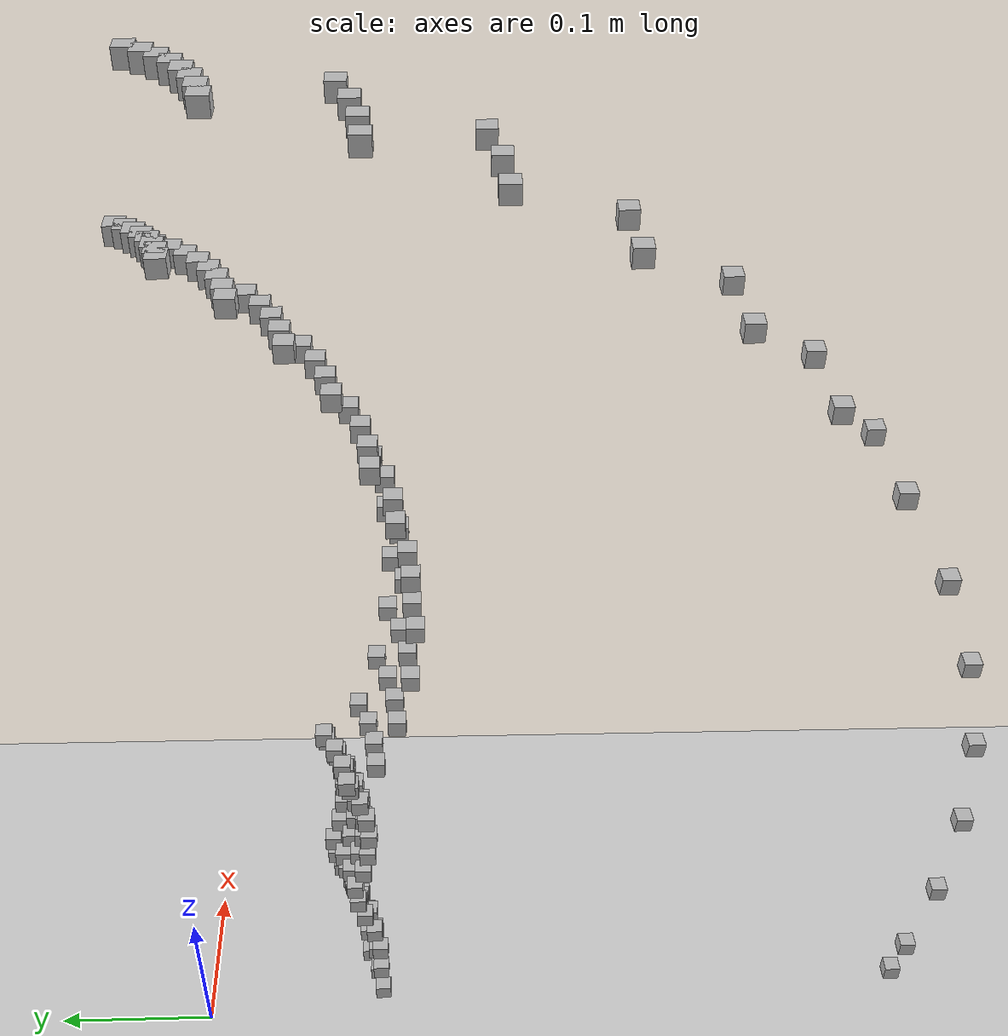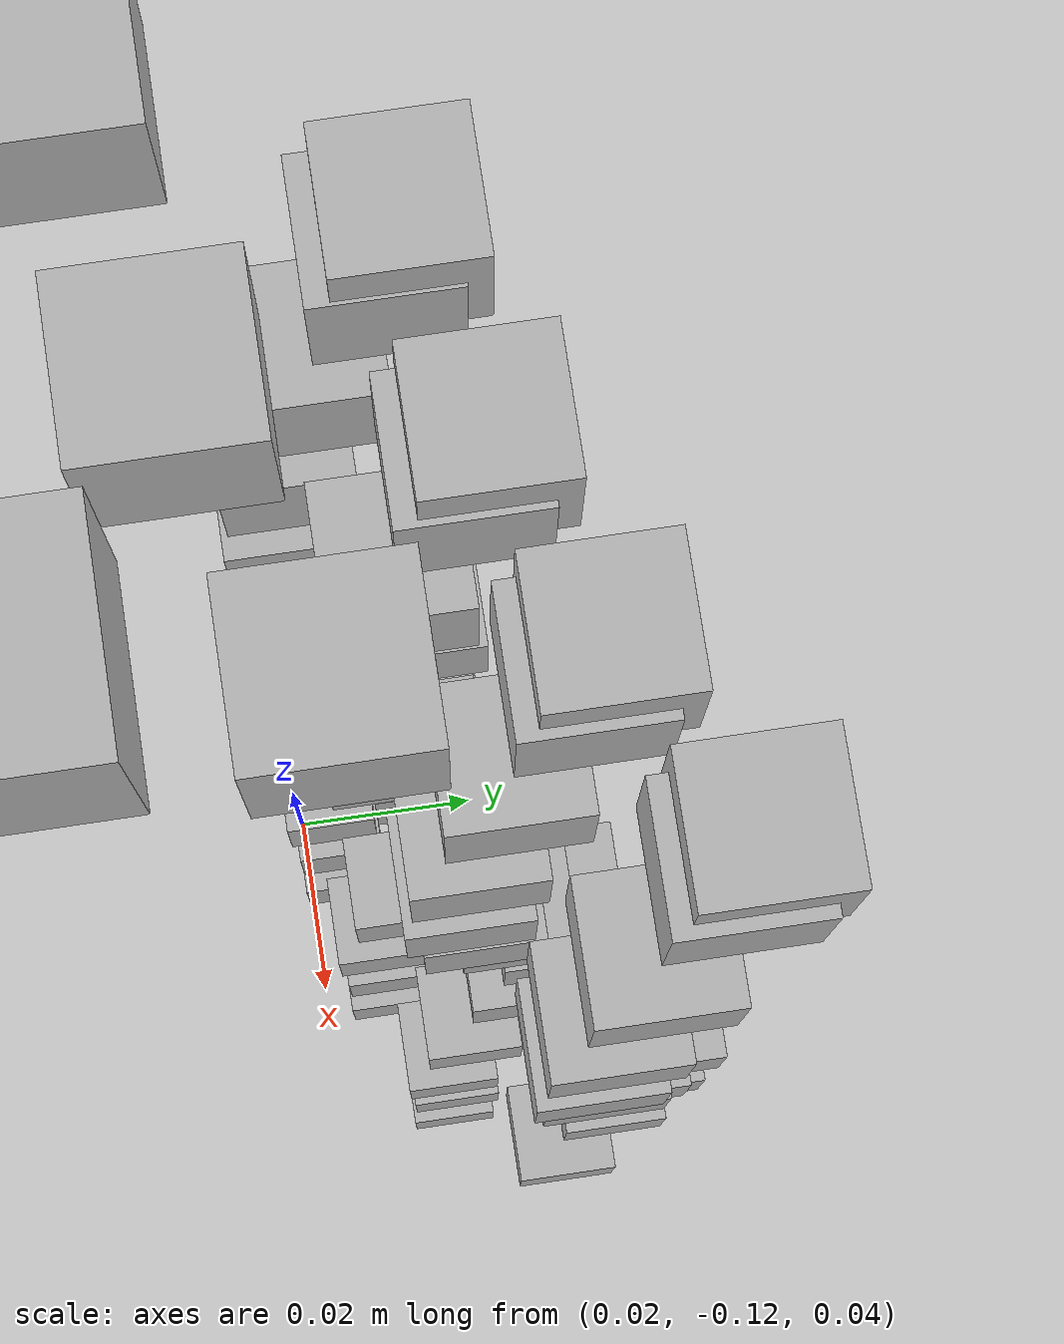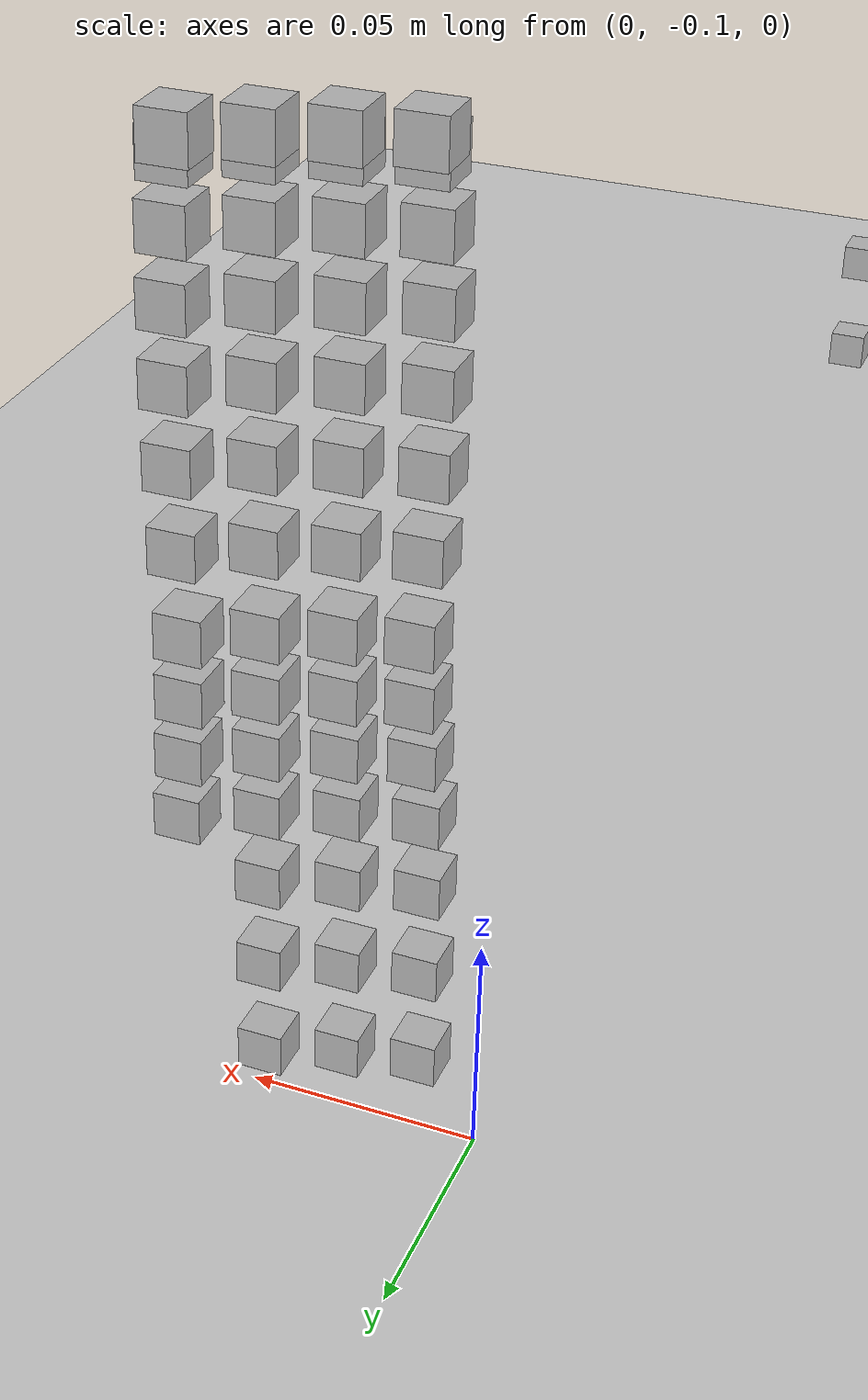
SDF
<sdf version="1.6">
 <world name="default">
  <model name="ground_plane">
   <static>1</static>
   <link name="link">
    <collision name="collision">
     <geometry><plane><normal>0 0 1</normal><size>100 100</size></plane></geometry>
     <surface>
      <contact><collide_bitmask>65535</collide_bitmask></contact>
      <friction><ode><mu>100</mu><mu2>50</mu2></ode></friction>
     </surface>
    </collision>
    <visual name="visual">
     <cast_shadows>0</cast_shadows>
     <geometry><plane><normal>0 0 1</normal><size>100 100</size></plane></geometry>
     <material>
      <script><uri>file://media/materials/scripts/gazebo.material</uri><name>Gazebo/Grey</name></script>
     </material>
    </visual>
   </link>
  </model>
  <model name="box_1685262135_6582057">
   <pose>0.00802323165047613 -0.45965063341047574 0.031024085780011867 0.0 0.0 0.0</pose>
   <static>1</static>
   <link name="box_1685262135_6582057_link">
    <visual name="visual"><geometry><box><size>0.01 0.01 0.01</size></box></geometry></visual>
   </link>
  </model>
  <model name="box_1685262135_6589622">
   <pose>0.0081197060630809 -0.46517764880695317 0.05746253559996678 0.0 0.0 0.0</pose>
   <static>1</static>
   <link name="box_1685262135_6589622_link">
    <visual name="visual"><geometry><box><size>0.01 0.01 0.01</size></box></geometry></visual>
   </link>
  </model>
  <model name="box_1685262135_6596909">
   <pose>0.008290474247812474 -0.4749609515579795 0.11486971929344875 0.0 0.0 0.0</pose>
   <static>1</static>
   <link name="box_1685262135_6596909_link">
    <visual name="visual"><geometry><box><size>0.01 0.01 0.01</size></box></geometry></visual>
   </link>
  </model>
  <model name="box_1685262135_6604342">
   <pose>0.008334752513249341 -0.47749765168593417 0.18152491402812204 0.0 0.0 0.0</pose>
   <static>1</static>
   <link name="box_1685262135_6604342_link">
    <visual name="visual"><geometry><box><size>0.01 0.01 0.01</size></box></geometry></visual>
   </link>
  </model>
  <model name="box_1685262135_6611545">
   <pose>0.008216562687438051 -0.47072656110005917 0.24785452819062248 0.0 0.0 0.0</pose>
   <static>1</static>
   <link name="box_1685262135_6611545_link">
    <visual name="visual"><geometry><box><size>0.01 0.01 0.01</size></box></geometry></visual>
   </link>
  </model>
  <model name="box_1685262135_6619153">
   <pose>0.007938128575516708 -0.45477508151139073 0.31265492137086764 0.0 0.0 0.0</pose>
   <static>1</static>
   <link name="box_1685262135_6619153_link">
    <visual name="visual"><geometry><box><size>0.01 0.01 0.01</size></box></geometry></visual>
   </link>
  </model>
  <model name="box_1685262135_6626463">
   <pose>0.007505643757544571 -0.4299980428838808 0.37450685986133164 0.0 0.0 0.0</pose>
   <static>1</static>
   <link name="box_1685262135_6626463_link">
    <visual name="visual"><geometry><box><size>0.01 0.01 0.01</size></box></geometry></visual>
   </link>
  </model>
  <model name="box_1685262135_6634176">
   <pose>0.01848465936416283 -0.11670754605873525 0.005648136022940203 0.0 0.0 0.0</pose>
   <static>1</static>
   <link name="box_1685262135_6634176_link">
    <visual name="visual"><geometry><box><size>0.01 0.01 0.01</size></box></geometry></visual>
   </link>
  </model>
  <model name="box_1685262135_6634338">
   <pose>0.034547319020329155 -0.11299918887925056 0.005648136022940203 0.0 0.0 0.0</pose>
   <static>1</static>
   <link name="box_1685262135_6634338_link">
    <visual name="visual"><geometry><box><size>0.01 0.01 0.01</size></box></geometry></visual>
   </link>
  </model>
  <model name="box_1685262135_6634498">
   <pose>0.04993755440875771 -0.10709143102290353 0.005648136022940203 0.0 0.0 0.0</pose>
   <static>1</static>
   <link name="box_1685262135_6634498_link">
    <visual name="visual"><geometry><box><size>0.01 0.01 0.01</size></box></geometry></visual>
   </link>
  </model>
  <model name="box_1685262135_6641266">
   <pose>0.006926070216491294 -0.396794296954735 0.4324042100445494 0.0 0.0 0.0</pose>
   <static>1</static>
   <link name="box_1685262135_6641266_link">
    <visual name="visual"><geometry><box><size>0.01 0.01 0.01</size></box></geometry></visual>
   </link>
  </model>
  <model name="box_1685262135_6641436">
   <pose>0.062081758927712935 -0.3919687994635383 0.4324042100445494 0.0 0.0 0.0</pose>
   <static>1</static>
   <link name="box_1685262135_6641436_link">
    <visual name="visual"><geometry><box><size>0.01 0.01 0.01</size></box></geometry></visual>
   </link>
  </model>
  <model name="box_1685262135_664885">
   <pose>0.0183901909662869 -0.11611109606855717 0.02920890265866033 0.0 0.0 0.0</pose>
   <static>1</static>
   <link name="box_1685262135_664885_link">
    <visual name="visual"><geometry><box><size>0.01 0.01 0.01</size></box></geometry></visual>
   </link>
  </model>
  <model name="box_1685262135_664902">
   <pose>0.03437076018770676 -0.1124216909592511 0.02920890265866033 0.0 0.0 0.0</pose>
   <static>1</static>
   <link name="box_1685262135_664902_link">
    <visual name="visual"><geometry><box><size>0.01 0.01 0.01</size></box></geometry></visual>
   </link>
  </model>
  <model name="box_1685262135_6649182">
   <pose>0.04968234165823315 -0.10654412551320133 0.02920890265866033 0.0 0.0 0.0</pose>
   <static>1</static>
   <link name="box_1685262135_6649182_link">
    <visual name="visual"><geometry><box><size>0.01 0.01 0.01</size></box></geometry></visual>
   </link>
  </model>
  <model name="box_1685262135_665598">
   <pose>0.0062105669177714975 -0.3558031404243957 0.4851615351605009 0.0 0.0 0.0</pose>
   <static>1</static>
   <link name="box_1685262135_665598_link">
    <visual name="visual"><geometry><box><size>0.01 0.01 0.01</size></box></geometry></visual>
   </link>
  </model>
  <model name="box_1685262135_6656163">
   <pose>0.0556683524916447 -0.35147614486358586 0.4851615351605009 0.0 0.0 0.0</pose>
   <static>1</static>
   <link name="box_1685262135_6656163_link">
    <visual name="visual"><geometry><box><size>0.01 0.01 0.01</size></box></geometry></visual>
   </link>
  </model>
  <model name="box_1685262135_6663623">
   <pose>0.018432707986372823 -0.11637953796852414 0.05028140928145608 0.0 0.0 0.0</pose>
   <static>1</static>
   <link name="box_1685262135_6663623_link">
    <visual name="visual"><geometry><box><size>0.01 0.01 0.01</size></box></geometry></visual>
   </link>
  </model>
  <model name="box_1685262135_666382">
   <pose>0.03445022332672191 -0.11268160317557177 0.05028140928145608 0.0 0.0 0.0</pose>
   <static>1</static>
   <link name="box_1685262135_666382_link">
    <visual name="visual"><geometry><box><size>0.01 0.01 0.01</size></box></geometry></visual>
   </link>
  </model>
  <model name="box_1685262135_666399">
   <pose>0.04979720425656458 -0.1067904491502308 0.05028140928145608 0.0 0.0 0.0</pose>
   <static>1</static>
   <link name="box_1685262135_666399_link">
    <visual name="visual"><geometry><box><size>0.01 0.01 0.01</size></box></geometry></visual>
   </link>
  </model>
  <model name="box_1685262135_6670754">
   <pose>0.005373627852161957 -0.3078549334683411 0.5316791207351375 0.0 0.0 0.0</pose>
   <static>1</static>
   <link name="box_1685262135_6670754_link">
    <visual name="visual"><geometry><box><size>0.01 0.01 0.01</size></box></geometry></visual>
   </link>
  </model>
  <model name="box_1685262135_6670911">
   <pose>0.04816645781194006 -0.304111045966668 0.5316791207351375 0.0 0.0 0.0</pose>
   <static>1</static>
   <link name="box_1685262135_6670911_link">
    <visual name="visual"><geometry><box><size>0.01 0.01 0.01</size></box></geometry></visual>
   </link>
  </model>
  <model name="box_1685262135_667817">
   <pose>0.017974095791815192 -0.11348397453048746 0.06994559093984248 0.0 0.0 0.0</pose>
   <static>1</static>
   <link name="box_1685262135_667817_link">
    <visual name="visual"><geometry><box><size>0.01 0.01 0.01</size></box></geometry></visual>
   </link>
  </model>
  <model name="box_1685262135_6678429">
   <pose>0.03359308977181784 -0.10987804564312317 0.06994559093984248 0.0 0.0 0.0</pose>
   <static>1</static>
   <link name="box_1685262135_6678429_link">
    <visual name="visual"><geometry><box><size>0.01 0.01 0.01</size></box></geometry></visual>
   </link>
  </model>
  <model name="box_1685262135_6678684">
   <pose>0.04855823247098531 -0.10413346558173996 0.06994559093984248 0.0 0.0 0.0</pose>
   <static>1</static>
   <link name="box_1685262135_6678684_link">
    <visual name="visual"><geometry><box><size>0.01 0.01 0.01</size></box></geometry></visual>
   </link>
  </model>
  <model name="box_1685262135_6678863">
   <pose>0.06257824440927584 -0.09636204606286963 0.06994559093984248 0.0 0.0 0.0</pose>
   <static>1</static>
   <link name="box_1685262135_6678863_link">
    <visual name="visual"><geometry><box><size>0.01 0.01 0.01</size></box></geometry></visual>
   </link>
  </model>
  <model name="box_1685262135_6685495">
   <pose>0.004432525394966372 -0.2539392098049922 0.5710245451470004 0.0 0.0 0.0</pose>
   <static>1</static>
   <link name="box_1685262135_6685495_link">
    <visual name="visual"><geometry><box><size>0.01 0.01 0.01</size></box></geometry></visual>
   </link>
  </model>
  <model name="box_1685262135_6685658">
   <pose>0.03973089564643078 -0.25085100256704834 0.5710245451470004 0.0 0.0 0.0</pose>
   <static>1</static>
   <link name="box_1685262135_6685658_link">
    <visual name="visual"><geometry><box><size>0.01 0.01 0.01</size></box></geometry></visual>
   </link>
  </model>
  <model name="box_1685262135_6694922">
   <pose>0.017090012647670325 -0.10790209324004411 0.08776207523471741 0.0 0.0 0.0</pose>
   <static>1</static>
   <link name="box_1685262135_6694922_link">
    <visual name="visual"><geometry><box><size>0.01 0.01 0.01</size></box></geometry></visual>
   </link>
  </model>
  <model name="box_1685262135_669513">
   <pose>0.03194076273567656 -0.10447352743036831 0.08776207523471741 0.0 0.0 0.0</pose>
   <static>1</static>
   <link name="box_1685262135_669513_link">
    <visual name="visual"><geometry><box><size>0.01 0.01 0.01</size></box></geometry></visual>
   </link>
  </model>
  <model name="box_1685262135_6695318">
   <pose>0.04616982220911195 -0.0990115032461365 0.08776207523471741 0.0 0.0 0.0</pose>
   <static>1</static>
   <link name="box_1685262135_6695318_link">
    <visual name="visual"><geometry><box><size>0.01 0.01 0.01</size></box></geometry></visual>
   </link>
  </model>
  <model name="box_1685262135_6695518">
   <pose>0.05950023861064137 -0.09162233277513429 0.08776207523471741 0.0 0.0 0.0</pose>
   <static>1</static>
   <link name="box_1685262135_6695518_link">
    <visual name="visual"><geometry><box><size>0.01 0.01 0.01</size></box></geometry></visual>
   </link>
  </model>
  <model name="box_1685262135_6703122">
   <pose>0.003402930713505355 -0.1949537700088561 0.6025204345093003 0.0 0.0 0.0</pose>
   <static>1</static>
   <link name="box_1685262135_6703122_link">
    <visual name="visual"><geometry><box><size>0.01 0.01 0.01</size></box></geometry></visual>
   </link>
  </model>
  <model name="box_1685262135_6703293">
   <pose>0.030502134341712266 -0.19258289690080743 0.6025204345093003 0.0 0.0 0.0</pose>
   <static>1</static>
   <link name="box_1685262135_6703293_link">
    <visual name="visual"><geometry><box><size>0.01 0.01 0.01</size></box></geometry></visual>
   </link>
  </model>
  <model name="box_1685262135_670351">
   <pose>0.05700764862062128 -0.1864636167643829 0.6025204345093003 0.0 0.0 0.0</pose>
   <static>1</static>
   <link name="box_1685262135_670351_link">
    <visual name="visual"><geometry><box><size>0.01 0.01 0.01</size></box></geometry></visual>
   </link>
  </model>
  <model name="box_1685262135_6711335">
   <pose>0.016522411215583704 -0.1043183988384755 0.10333120046485805 0.0 0.0 0.0</pose>
   <static>1</static>
   <link name="box_1685262135_6711335_link">
    <visual name="visual"><geometry><box><size>0.01 0.01 0.01</size></box></geometry></visual>
   </link>
  </model>
  <model name="box_1685262135_6711497">
   <pose>0.03087993129894966 -0.10100370414777984 0.10333120046485805 0.0 0.0 0.0</pose>
   <static>1</static>
   <link name="box_1685262135_6711497_link">
    <visual name="visual"><geometry><box><size>0.01 0.01 0.01</size></box></geometry></visual>
   </link>
  </model>
  <model name="box_1685262135_6711657">
   <pose>0.04463640864498279 -0.09572308724585828 0.10333120046485805 0.0 0.0 0.0</pose>
   <static>1</static>
   <link name="box_1685262135_6711657_link">
    <visual name="visual"><geometry><box><size>0.01 0.01 0.01</size></box></geometry></visual>
   </link>
  </model>
  <model name="box_1685262135_671184">
   <pose>0.05752408906990364 -0.08857932933409399 0.10333120046485805 0.0 0.0 0.0</pose>
   <static>1</static>
   <link name="box_1685262135_671184_link">
    <visual name="visual"><geometry><box><size>0.01 0.01 0.01</size></box></geometry></visual>
   </link>
  </model>
  <model name="box_1685262135_6718905">
   <pose>0.0023081185157193367 -0.13223202120480723 0.6254485040649695 0.0 0.0 0.0</pose>
   <static>1</static>
   <link name="box_1685262135_6718905_link">
    <visual name="visual"><geometry><box><size>0.01 0.01 0.01</size></box></geometry></visual>
   </link>
  </model>
  <model name="box_1685262135_6719077">
   <pose>0.020688796502278225 -0.13062392025306283 0.6254485040649695 0.0 0.0 0.0</pose>
   <static>1</static>
   <link name="box_1685262135_6719077_link">
    <visual name="visual"><geometry><box><size>0.01 0.01 0.01</size></box></geometry></visual>
   </link>
  </model>
  <model name="box_1685262135_6719239">
   <pose>0.03866679059807746 -0.1264733732760996 0.6254485040649695 0.0 0.0 0.0</pose>
   <static>1</static>
   <link name="box_1685262135_6719239_link">
    <visual name="visual"><geometry><box><size>0.01 0.01 0.01</size></box></geometry></visual>
   </link>
  </model>
  <model name="box_1685262135_6719408">
   <pose>0.05589217959770752 -0.11986116594964694 0.6254485040649695 0.0 0.0 0.0</pose>
   <static>1</static>
   <link name="box_1685262135_6719408_link">
    <visual name="visual"><geometry><box><size>0.01 0.01 0.01</size></box></geometry></visual>
   </link>
  </model>
  <model name="box_1685262135_6726503">
   <pose>0.01633395767570764 -0.1031285500156371 0.1175214826546544 0.0 0.0 0.0</pose>
   <static>1</static>
   <link name="box_1685262135_6726503_link">
    <visual name="visual"><geometry><box><size>0.01 0.01 0.01</size></box></geometry></visual>
   </link>
  </model>
  <model name="box_1685262135_6726696">
   <pose>0.03052771682562097 -0.0998516625154247 0.1175214826546544 0.0 0.0 0.0</pose>
   <static>1</static>
   <link name="box_1685262135_6726696_link">
    <visual name="visual"><geometry><box><size>0.01 0.01 0.01</size></box></geometry></visual>
   </link>
  </model>
  <model name="box_1685262135_672695">
   <pose>0.0441272886922868 -0.09463127598393223 0.1175214826546544 0.0 0.0 0.0</pose>
   <static>1</static>
   <link name="box_1685262135_672695_link">
    <visual name="visual"><geometry><box><size>0.01 0.01 0.01</size></box></geometry></visual>
   </link>
  </model>
  <model name="box_1685262135_6727197">
   <pose>0.056867973078604216 -0.08756899930689352 0.1175214826546544 0.0 0.0 0.0</pose>
   <static>1</static>
   <link name="box_1685262135_6727197_link">
    <visual name="visual"><geometry><box><size>0.01 0.01 0.01</size></box></geometry></visual>
   </link>
  </model>
  <model name="box_1685262135_6734538">
   <pose>0.010469690360837896 -0.06610302337391895 0.6394057500981778 0.0 0.0 0.0</pose>
   <static>1</static>
   <link name="box_1685262135_6734538_link">
    <visual name="visual"><geometry><box><size>0.01 0.01 0.01</size></box></geometry></visual>
   </link>
  </model>
  <model name="box_1685262135_6734703">
   <pose>0.019567562799733165 -0.06400261402086008 0.6394057500981778 0.0 0.0 0.0</pose>
   <static>1</static>
   <link name="box_1685262135_6734703_link">
    <visual name="visual"><geometry><box><size>0.01 0.01 0.01</size></box></geometry></visual>
   </link>
  </model>
  <model name="box_1685262135_6734872">
   <pose>0.02828457488650441 -0.060656466587779574 0.6394057500981778 0.0 0.0 0.0</pose>
   <static>1</static>
   <link name="box_1685262135_6734872_link">
    <visual name="visual"><geometry><box><size>0.01 0.01 0.01</size></box></geometry></visual>
   </link>
  </model>
  <model name="box_1685262135_673504">
   <pose>0.036451059896336936 -0.05612971002827605 0.6394057500981778 0.0 0.0 0.0</pose>
   <static>1</static>
   <link name="box_1685262135_673504_link">
    <visual name="visual"><geometry><box><size>0.01 0.01 0.01</size></box></geometry></visual>
   </link>
  </model>
  <model name="box_1685262135_673521">
   <pose>0.04390806648775333 -0.05051045250967099 0.6394057500981778 0.0 0.0 0.0</pose>
   <static>1</static>
   <link name="box_1685262135_673521_link">
    <visual name="visual"><geometry><box><size>0.01 0.01 0.01</size></box></geometry></visual>
   </link>
  </model>
  <model name="box_1685262135_6735377">
   <pose>0.050510452509671 -0.043908066487753326 0.6394057500981778 0.0 0.0 0.0</pose>
   <static>1</static>
   <link name="box_1685262135_6735377_link">
    <visual name="visual"><geometry><box><size>0.01 0.01 0.01</size></box></geometry></visual>
   </link>
  </model>
  <model name="box_1685262135_6735573">
   <pose>0.05612971002827606 -0.03645105989633693 0.6394057500981778 0.0 0.0 0.0</pose>
   <static>1</static>
   <link name="box_1685262135_6735573_link">
    <visual name="visual"><geometry><box><size>0.01 0.01 0.01</size></box></geometry></visual>
   </link>
  </model>
  <model name="box_1685262135_6735744">
   <pose>0.060656466587779574 -0.02828457488650441 0.6394057500981778 0.0 0.0 0.0</pose>
   <static>1</static>
   <link name="box_1685262135_6735744_link">
    <visual name="visual"><geometry><box><size>0.01 0.01 0.01</size></box></geometry></visual>
   </link>
  </model>
  <model name="box_1685262135_6742182">
   <pose>0.017242683973568228 -0.10886602205517945 0.13255102465284446 0.0 0.0 0.0</pose>
   <static>1</static>
   <link name="box_1685262135_6742182_link">
    <visual name="visual"><geometry><box><size>0.01 0.01 0.01</size></box></geometry></visual>
   </link>
  </model>
  <model name="box_1685262135_6742344">
   <pose>0.03222610123703283 -0.10540682761468383 0.13255102465284446 0.0 0.0 0.0</pose>
   <static>1</static>
   <link name="box_1685262135_6742344_link">
    <visual name="visual"><geometry><box><size>0.01 0.01 0.01</size></box></geometry></visual>
   </link>
  </model>
  <model name="box_1685262135_6742508">
   <pose>0.046582274096565436 -0.09989600917315772 0.13255102465284446 0.0 0.0 0.0</pose>
   <static>1</static>
   <link name="box_1685262135_6742508_link">
    <visual name="visual"><geometry><box><size>0.01 0.01 0.01</size></box></geometry></visual>
   </link>
  </model>
  <model name="box_1685262135_6742668">
   <pose>0.06003177597735985 -0.09244082854310233 0.13255102465284446 0.0 0.0 0.0</pose>
   <static>1</static>
   <link name="box_1685262135_6742668_link">
    <visual name="visual"><geometry><box><size>0.01 0.01 0.01</size></box></geometry></visual>
   </link>
  </model>
  <model name="box_1685262135_675776">
   <pose>0.01781188111340038 -0.1124597913589434 0.14825398363050718 0.0 0.0 0.0</pose>
   <static>1</static>
   <link name="box_1685262135_675776_link">
    <visual name="visual"><geometry><box><size>0.01 0.01 0.01</size></box></geometry></visual>
   </link>
  </model>
  <model name="box_1685262135_6757925">
   <pose>0.03328991500756757 -0.10888640567161686 0.14825398363050718 0.0 0.0 0.0</pose>
   <static>1</static>
   <link name="box_1685262135_6757925_link">
    <visual name="visual"><geometry><box><size>0.01 0.01 0.01</size></box></geometry></visual>
   </link>
  </model>
  <model name="box_1685262135_6758084">
   <pose>0.04811999857282953 -0.10319366995434301 0.14825398363050718 0.0 0.0 0.0</pose>
   <static>1</static>
   <link name="box_1685262135_6758084_link">
    <visual name="visual"><geometry><box><size>0.01 0.01 0.01</size></box></geometry></visual>
   </link>
  </model>
  <model name="box_1685262135_675833">
   <pose>0.062013481101558486 -0.09549238683246765 0.14825398363050718 0.0 0.0 0.0</pose>
   <static>1</static>
   <link name="box_1685262135_675833_link">
    <visual name="visual"><geometry><box><size>0.01 0.01 0.01</size></box></geometry></visual>
   </link>
  </model>
  <model name="box_1685262135_6766255">
   <pose>0.018030107313515915 -0.11383761736046465 0.16428489958480497 0.0 0.0 0.0</pose>
   <static>1</static>
   <link name="box_1685262135_6766255_link">
    <visual name="visual"><geometry><box><size>0.01 0.01 0.01</size></box></geometry></visual>
   </link>
  </model>
  <model name="box_1685262135_6766424">
   <pose>0.03369777376251991 -0.11022045154822441 0.16428489958480497 0.0 0.0 0.0</pose>
   <static>1</static>
   <link name="box_1685262135_6766424_link">
    <visual name="visual"><geometry><box><size>0.01 0.01 0.01</size></box></geometry></visual>
   </link>
  </model>
  <model name="box_1685262135_6766589">
   <pose>0.048709551375885986 -0.10445797002050339 0.16428489958480497 0.0 0.0 0.0</pose>
   <static>1</static>
   <link name="box_1685262135_6766589_link">
    <visual name="visual"><geometry><box><size>0.01 0.01 0.01</size></box></geometry></visual>
   </link>
  </model>
  <model name="box_1685262135_6766753">
   <pose>0.06277325297801394 -0.09666233292551306 0.16428489958480497 0.0 0.0 0.0</pose>
   <static>1</static>
   <link name="box_1685262135_6766753_link">
    <visual name="visual"><geometry><box><size>0.01 0.01 0.01</size></box></geometry></visual>
   </link>
  </model>
  <model name="box_1685262135_6773872">
   <pose>0.017898972480359238 -0.113009664608995 0.18035913689155542 0.0 0.0 0.0</pose>
   <static>1</static>
   <link name="box_1685262135_6773872_link">
    <visual name="visual"><geometry><box><size>0.01 0.01 0.01</size></box></geometry></visual>
   </link>
  </model>
  <model name="box_1685262135_677404">
   <pose>0.03345268637267465 -0.10941880681739159 0.18035913689155542 0.0 0.0 0.0</pose>
   <static>1</static>
   <link name="box_1685262135_677404_link">
    <visual name="visual"><geometry><box><size>0.01 0.01 0.01</size></box></geometry></visual>
   </link>
  </model>
  <model name="box_1685262135_6774204">
   <pose>0.048355281776612705 -0.10369823641313569 0.18035913689155542 0.0 0.0 0.0</pose>
   <static>1</static>
   <link name="box_1685262135_6774204_link">
    <visual name="visual"><geometry><box><size>0.01 0.01 0.01</size></box></geometry></visual>
   </link>
  </model>
  <model name="box_1685262135_6774364">
   <pose>0.062316696624086794 -0.09595929779209372 0.18035913689155542 0.0 0.0 0.0</pose>
   <static>1</static>
   <link name="box_1685262135_6774364_link">
    <visual name="visual"><geometry><box><size>0.01 0.01 0.01</size></box></geometry></visual>
   </link>
  </model>
  <model name="box_1685262135_6781278">
   <pose>0.01741873784435723 -0.10997758244853792 0.19617448160834577 0.0 0.0 0.0</pose>
   <static>1</static>
   <link name="box_1685262135_6781278_link">
    <visual name="visual"><geometry><box><size>0.01 0.01 0.01</size></box></geometry></visual>
   </link>
  </model>
  <model name="box_1685262135_678144">
   <pose>0.03255514107050162 -0.10648306841557081 0.19617448160834577 0.0 0.0 0.0</pose>
   <static>1</static>
   <link name="box_1685262135_678144_link">
    <visual name="visual"><geometry><box><size>0.01 0.01 0.01</size></box></geometry></visual>
   </link>
  </model>
  <model name="box_1685262135_6781602">
   <pose>0.04705789550663281 -0.10091598257858972 0.19617448160834577 0.0 0.0 0.0</pose>
   <static>1</static>
   <link name="box_1685262135_6781602_link">
    <visual name="visual"><geometry><box><size>0.01 0.01 0.01</size></box></geometry></visual>
   </link>
  </model>
  <model name="box_1685262135_6781762">
   <pose>0.06064472153429017 -0.09338468193094517 0.19617448160834577 0.0 0.0 0.0</pose>
   <static>1</static>
   <link name="box_1685262135_6781762_link">
    <visual name="visual"><geometry><box><size>0.01 0.01 0.01</size></box></geometry></visual>
   </link>
  </model>
  <model name="box_1685262135_6788754">
   <pose>0.01659659675638792 -0.1047867879090951 0.2113835132273968 0.0 0.0 0.0</pose>
   <static>1</static>
   <link name="box_1685262135_6788754_link">
    <visual name="visual"><geometry><box><size>0.01 0.01 0.01</size></box></geometry></visual>
   </link>
  </model>
  <model name="box_1685262135_6788921">
   <pose>0.03101858203058433 -0.10145721025640185 0.2113835132273968 0.0 0.0 0.0</pose>
   <static>1</static>
   <link name="box_1685262135_6788921_link">
    <visual name="visual"><geometry><box><size>0.01 0.01 0.01</size></box></geometry></visual>
   </link>
  </model>
  <model name="box_1685262135_6789083">
   <pose>0.044836825888669524 -0.09615288341193393 0.2113835132273968 0.0 0.0 0.0</pose>
   <static>1</static>
   <link name="box_1685262135_6789083_link">
    <visual name="visual"><geometry><box><size>0.01 0.01 0.01</size></box></geometry></visual>
   </link>
  </model>
  <model name="box_1685262135_6789246">
   <pose>0.0577823719319653 -0.08897705006413649 0.2113835132273968 0.0 0.0 0.0</pose>
   <static>1</static>
   <link name="box_1685262135_6789246_link">
    <visual name="visual"><geometry><box><size>0.01 0.01 0.01</size></box></geometry></visual>
   </link>
  </model>
  <model name="box_1685262135_6796186">
   <pose>0.016340403022067598 -0.10316924433097992 0.21508165296930842 0.0 0.0 0.0</pose>
   <static>1</static>
   <link name="box_1685262135_6796186_link">
    <visual name="visual"><geometry><box><size>0.01 0.01 0.01</size></box></geometry></visual>
   </link>
  </model>
  <model name="box_1685262135_6796355">
   <pose>0.030539763000370927 -0.09989106377764831 0.21508165296930842 0.0 0.0 0.0</pose>
   <static>1</static>
   <link name="box_1685262135_6796355_link">
    <visual name="visual"><geometry><box><size>0.01 0.01 0.01</size></box></geometry></visual>
   </link>
  </model>
  <model name="box_1685262135_6796522">
   <pose>0.04414470123033756 -0.09466861729228572 0.21508165296930842 0.0 0.0 0.0</pose>
   <static>1</static>
   <link name="box_1685262135_6796522_link">
    <visual name="visual"><geometry><box><size>0.01 0.01 0.01</size></box></geometry></visual>
   </link>
  </model>
  <model name="box_1685262135_6796684">
   <pose>0.05689041306470909 -0.08760355385528491 0.21508165296930842 0.0 0.0 0.0</pose>
   <static>1</static>
   <link name="box_1685262135_6796684_link">
    <visual name="visual"><geometry><box><size>0.01 0.01 0.01</size></box></geometry></visual>
   </link>
  </model>
  <model name="box_1685262135_6803348">
   <pose>0.002133760554245034 -0.12224306028192693 0.24636117300793503 0.0 0.0 0.0</pose>
   <static>1</static>
   <link name="box_1685262135_6803348_link">
    <visual name="visual"><geometry><box><size>0.01 0.01 0.01</size></box></geometry></visual>
   </link>
  </model>
  <model name="box_1685262135_6803558">
   <pose>0.01912594071349318 -0.12075643714940258 0.24636117300793503 0.0 0.0 0.0</pose>
   <static>1</static>
   <link name="box_1685262135_6803558_link">
    <visual name="visual"><geometry><box><size>0.01 0.01 0.01</size></box></geometry></visual>
   </link>
  </model>
  <model name="box_1685262135_680375">
   <pose>0.03574585619218826 -0.1169194273261765 0.24636117300793503 0.0 0.0 0.0</pose>
   <static>1</static>
   <link name="box_1685262135_680375_link">
    <visual name="visual"><geometry><box><size>0.01 0.01 0.01</size></box></geometry></visual>
   </link>
  </model>
  <model name="box_1685262135_6803918">
   <pose>0.05167001924041116 -0.11080671384392378 0.24636117300793503 0.0 0.0 0.0</pose>
   <static>1</static>
   <link name="box_1685262135_6803918_link">
    <visual name="visual"><geometry><box><size>0.01 0.01 0.01</size></box></geometry></visual>
   </link>
  </model>
  <model name="box_1685262135_6810622">
   <pose>0.002366190952875571 -0.13555898890129264 0.2798396861917631 0.0 0.0 0.0</pose>
   <static>1</static>
   <link name="box_1685262135_6810622_link">
    <visual name="visual"><geometry><box><size>0.01 0.01 0.01</size></box></geometry></visual>
   </link>
  </model>
  <model name="box_1685262135_6810784">
   <pose>0.021209328193581883 -0.13391042800746766 0.2798396861917631 0.0 0.0 0.0</pose>
   <static>1</static>
   <link name="box_1685262135_6810784_link">
    <visual name="visual"><geometry><box><size>0.01 0.01 0.01</size></box></geometry></visual>
   </link>
  </model>
  <model name="box_1685262135_6810968">
   <pose>0.03963964998625334 -0.12965545295333156 0.2798396861917631 0.0 0.0 0.0</pose>
   <static>1</static>
   <link name="box_1685262135_6810968_link">
    <visual name="visual"><geometry><box><size>0.01 0.01 0.01</size></box></geometry></visual>
   </link>
  </model>
  <model name="box_1685262135_6811135">
   <pose>0.05729843108137593 -0.12287688198835067 0.2798396861917631 0.0 0.0 0.0</pose>
   <static>1</static>
   <link name="box_1685262135_6811135_link">
    <visual name="visual"><geometry><box><size>0.01 0.01 0.01</size></box></geometry></visual>
   </link>
  </model>
  <model name="box_1685262135_681837">
   <pose>0.0025146335149434772 -0.14406325758653463 0.314821790288947 0.0 0.0 0.0</pose>
   <static>1</static>
   <link name="box_1685262135_681837_link">
    <visual name="visual"><geometry><box><size>0.01 0.01 0.01</size></box></geometry></visual>
   </link>
  </model>
  <model name="box_1685262135_6818538">
   <pose>0.02253989156716263 -0.14231127452278425 0.314821790288947 0.0 0.0 0.0</pose>
   <static>1</static>
   <link name="box_1685262135_6818538_link">
    <visual name="visual"><geometry><box><size>0.01 0.01 0.01</size></box></geometry></visual>
   </link>
  </model>
  <model name="box_1685262135_68187">
   <pose>0.04212643626877358 -0.13778936437712333 0.314821790288947 0.0 0.0 0.0</pose>
   <static>1</static>
   <link name="box_1685262135_68187_link">
    <visual name="visual"><geometry><box><size>0.01 0.01 0.01</size></box></geometry></visual>
   </link>
  </model>
  <model name="box_1685262135_6818888">
   <pose>0.060893037806523886 -0.13058554098694067 0.314821790288947 0.0 0.0 0.0</pose>
   <static>1</static>
   <link name="box_1685262135_6818888_link">
    <visual name="visual"><geometry><box><size>0.01 0.01 0.01</size></box></geometry></visual>
   </link>
  </model>
  <model name="box_1685262135_6825552">
   <pose>0.002576717824250073 -0.14762006528458177 0.3506667056619606 0.0 0.0 0.0</pose>
   <static>1</static>
   <link name="box_1685262135_6825552_link">
    <visual name="visual"><geometry><box><size>0.01 0.01 0.01</size></box></geometry></visual>
   </link>
  </model>
  <model name="box_1685262135_6825714">
   <pose>0.023096383633094675 -0.14582482714696735 0.3506667056619606 0.0 0.0 0.0</pose>
   <static>1</static>
   <link name="box_1685262135_6825714_link">
    <visual name="visual"><geometry><box><size>0.01 0.01 0.01</size></box></geometry></visual>
   </link>
  </model>
  <model name="box_1685262135_6825874">
   <pose>0.04316650460626806 -0.14119127462221956 0.3506667056619606 0.0 0.0 0.0</pose>
   <static>1</static>
   <link name="box_1685262135_6825874_link">
    <visual name="visual"><geometry><box><size>0.01 0.01 0.01</size></box></geometry></visual>
   </link>
  </model>
  <model name="box_1685262135_682606">
   <pose>0.062396438668451654 -0.13380959453964478 0.3506667056619606 0.0 0.0 0.0</pose>
   <static>1</static>
   <link name="box_1685262135_682606_link">
    <visual name="visual"><geometry><box><size>0.01 0.01 0.01</size></box></geometry></visual>
   </link>
  </model>
  <model name="box_1685262135_6832752">
   <pose>0.002551004284423442 -0.14614693757452304 0.38661397693110494 0.0 0.0 0.0</pose>
   <static>1</static>
   <link name="box_1685262135_6832752_link">
    <visual name="visual"><geometry><box><size>0.01 0.01 0.01</size></box></geometry></visual>
   </link>
  </model>
  <model name="box_1685262135_6832917">
   <pose>0.02286590058415098 -0.14436961444759214 0.38661397693110494 0.0 0.0 0.0</pose>
   <static>1</static>
   <link name="box_1685262135_6832917_link">
    <visual name="visual"><geometry><box><size>0.01 0.01 0.01</size></box></geometry></visual>
   </link>
  </model>
  <model name="box_1685262135_683308">
   <pose>0.042735738138584396 -0.1397823009934413 0.38661397693110494 0.0 0.0 0.0</pose>
   <static>1</static>
   <link name="box_1685262135_683308_link">
    <visual name="visual"><geometry><box><size>0.01 0.01 0.01</size></box></geometry></visual>
   </link>
  </model>
  <model name="box_1685262135_683329">
   <pose>0.0617737731613319 -0.13247428405046388 0.38661397693110494 0.0 0.0 0.0</pose>
   <static>1</static>
   <link name="box_1685262135_683329_link">
    <visual name="visual"><geometry><box><size>0.01 0.01 0.01</size></box></geometry></visual>
   </link>
  </model>
  <model name="box_1685262135_684007">
   <pose>0.0024378984790975732 -0.13966711032718784 0.42204584917069304 0.0 0.0 0.0</pose>
   <static>1</static>
   <link name="box_1685262135_684007_link">
    <visual name="visual"><geometry><box><size>0.01 0.01 0.01</size></box></geometry></visual>
   </link>
  </model>
  <model name="box_1685262135_6840227">
   <pose>0.021852077865050303 -0.1379685897192583 0.42204584917069304 0.0 0.0 0.0</pose>
   <static>1</static>
   <link name="box_1685262135_6840227_link">
    <visual name="visual"><geometry><box><size>0.01 0.01 0.01</size></box></geometry></visual>
   </link>
  </model>
  <model name="box_1685262135_6840389">
   <pose>0.04084093141172996 -0.1335846674493881 0.42204584917069304 0.0 0.0 0.0</pose>
   <static>1</static>
   <link name="box_1685262135_6840389_link">
    <visual name="visual"><geometry><box><size>0.01 0.01 0.01</size></box></geometry></visual>
   </link>
  </model>
  <model name="box_1685262135_684055">
   <pose>0.059034862684351215 -0.12660067157792268 0.42204584917069304 0.0 0.0 0.0</pose>
   <static>1</static>
   <link name="box_1685262135_684055_link">
    <visual name="visual"><geometry><box><size>0.01 0.01 0.01</size></box></geometry></visual>
   </link>
  </model>
  <model name="box_1685262135_684878">
   <pose>0.002239714165660595 -0.12831313861456484 0.45627229759588134 0.0 0.0 0.0</pose>
   <static>1</static>
   <link name="box_1685262135_684878_link">
    <visual name="visual"><geometry><box><size>0.01 0.01 0.01</size></box></geometry></visual>
   </link>
  </model>
  <model name="box_1685262135_6848948">
   <pose>0.020075654816269585 -0.12675269600431538 0.45627229759588134 0.0 0.0 0.0</pose>
   <static>1</static>
   <link name="box_1685262135_6848948_link">
    <visual name="visual"><geometry><box><size>0.01 0.01 0.01</size></box></geometry></visual>
   </link>
  </model>
  <model name="box_1685262135_6849105">
   <pose>0.03752084568159875 -0.12272515634539662 0.45627229759588134 0.0 0.0 0.0</pose>
   <static>1</static>
   <link name="box_1685262135_6849105_link">
    <visual name="visual"><geometry><box><size>0.01 0.01 0.01</size></box></geometry></visual>
   </link>
  </model>
  <model name="box_1685262135_684927">
   <pose>0.05423573596506498 -0.11630891111601101 0.45627229759588134 0.0 0.0 0.0</pose>
   <static>1</static>
   <link name="box_1685262135_684927_link">
    <visual name="visual"><geometry><box><size>0.01 0.01 0.01</size></box></geometry></visual>
   </link>
  </model>
  <model name="box_1685262135_6856174">
   <pose>0.0175685692412074 -0.11092358065734655 0.4885508417419748 0.0 0.0 0.0</pose>
   <static>1</static>
   <link name="box_1685262135_6856174_link">
    <visual name="visual"><geometry><box><size>0.01 0.01 0.01</size></box></geometry></visual>
   </link>
  </model>
  <model name="box_1685262135_6856349">
   <pose>0.03283517182271986 -0.10739900773471991 0.4885508417419748 0.0 0.0 0.0</pose>
   <static>1</static>
   <link name="box_1685262135_6856349_link">
    <visual name="visual"><geometry><box><size>0.01 0.01 0.01</size></box></geometry></visual>
   </link>
  </model>
  <model name="box_1685262135_6856513">
   <pose>0.04746267513415744 -0.10178403529109757 0.4885508417419748 0.0 0.0 0.0</pose>
   <static>1</static>
   <link name="box_1685262135_6856513_link">
    <visual name="visual"><geometry><box><size>0.01 0.01 0.01</size></box></geometry></visual>
   </link>
  </model>
  <model name="box_1685262135_6856673">
   <pose>0.06116637146210144 -0.09418795237815814 0.4885508417419748 0.0 0.0 0.0</pose>
   <static>1</static>
   <link name="box_1685262135_6856673_link">
    <visual name="visual"><geometry><box><size>0.01 0.01 0.01</size></box></geometry></visual>
   </link>
  </model>
  <model name="box_1685262135_6864393">
   <pose>0.014389974854608816 -0.09085472553442217 0.5182674726656538 0.0 0.0 0.0</pose>
   <static>1</static>
   <link name="box_1685262135_6864393_link">
    <visual name="visual"><geometry><box><size>0.01 0.01 0.01</size></box></geometry></visual>
   </link>
  </model>
  <model name="box_1685262135_6864557">
   <pose>0.026894466498014403 -0.0879678361677644 0.5182674726656538 0.0 0.0 0.0</pose>
   <static>1</static>
   <link name="box_1685262135_6864557_link">
    <visual name="visual"><geometry><box><size>0.01 0.01 0.01</size></box></geometry></visual>
   </link>
  </model>
  <model name="box_1685262135_686472">
   <pose>0.038875487943038356 -0.08336875293203165 0.5182674726656538 0.0 0.0 0.0</pose>
   <static>1</static>
   <link name="box_1685262135_686472_link">
    <visual name="visual"><geometry><box><size>0.01 0.01 0.01</size></box></geometry></visual>
   </link>
  </model>
  <model name="box_1685262135_6864882">
   <pose>0.050099842235463196 -0.07714699175102782 0.5182674726656538 0.0 0.0 0.0</pose>
   <static>1</static>
   <link name="box_1685262135_6864882_link">
    <visual name="visual"><geometry><box><size>0.01 0.01 0.01</size></box></geometry></visual>
   </link>
  </model>
  <model name="box_1685262135_6865041">
   <pose>0.060349060086500615 -0.06942365212899272 0.5182674726656538 0.0 0.0 0.0</pose>
   <static>1</static>
   <link name="box_1685262135_6865041_link">
    <visual name="visual"><geometry><box><size>0.01 0.01 0.01</size></box></geometry></visual>
   </link>
  </model>
  <model name="box_1685262135_6872156">
   <pose>0.010591378792778989 -0.06687133389540545 0.5448600440676412 0.0 0.0 0.0</pose>
   <static>1</static>
   <link name="box_1685262135_6872156_link">
    <visual name="visual"><geometry><box><size>0.01 0.01 0.01</size></box></geometry></visual>
   </link>
  </model>
  <model name="box_1685262135_6872318">
   <pose>0.01979499512599518 -0.06474651164074213 0.5448600440676412 0.0 0.0 0.0</pose>
   <static>1</static>
   <link name="box_1685262135_6872318_link">
    <visual name="visual"><geometry><box><size>0.01 0.01 0.01</size></box></geometry></visual>
   </link>
  </model>
  <model name="box_1685262135_6872475">
   <pose>0.028613324395557097 -0.06136147218505718 0.5448600440676412 0.0 0.0 0.0</pose>
   <static>1</static>
   <link name="box_1685262135_6872475_link">
    <visual name="visual"><geometry><box><size>0.01 0.01 0.01</size></box></geometry></visual>
   </link>
  </model>
  <model name="box_1685262135_6872637">
   <pose>0.0368747278529336 -0.05678210147093018 0.5448600440676412 0.0 0.0 0.0</pose>
   <static>1</static>
   <link name="box_1685262135_6872637_link">
    <visual name="visual"><geometry><box><size>0.01 0.01 0.01</size></box></geometry></visual>
   </link>
  </model>
  <model name="box_1685262135_6872811">
   <pose>0.04441840667703399 -0.051097531740354654 0.5448600440676412 0.0 0.0 0.0</pose>
   <static>1</static>
   <link name="box_1685262135_6872811_link">
    <visual name="visual"><geometry><box><size>0.01 0.01 0.01</size></box></geometry></visual>
   </link>
  </model>
  <model name="box_1685262135_6873071">
   <pose>0.05109753174035466 -0.044418406677033985 0.5448600440676412 0.0 0.0 0.0</pose>
   <static>1</static>
   <link name="box_1685262135_6873071_link">
    <visual name="visual"><geometry><box><size>0.01 0.01 0.01</size></box></geometry></visual>
   </link>
  </model>
  <model name="box_1685262135_6873262">
   <pose>0.056782101470930185 -0.036874727852933595 0.5448600440676412 0.0 0.0 0.0</pose>
   <static>1</static>
   <link name="box_1685262135_6873262_link">
    <visual name="visual"><geometry><box><size>0.01 0.01 0.01</size></box></geometry></visual>
   </link>
  </model>
  <model name="box_1685262135_6873426">
   <pose>0.06136147218505718 -0.028613324395557097 0.5448600440676412 0.0 0.0 0.0</pose>
   <static>1</static>
   <link name="box_1685262135_6873426_link">
    <visual name="visual"><geometry><box><size>0.01 0.01 0.01</size></box></geometry></visual>
   </link>
  </model>
  <model name="box_1685262135_6879454">
   <pose>0.006254596297324886 -0.0394899668459159 0.5678387857354699 0.0 0.0 0.0</pose>
   <static>1</static>
   <link name="box_1685262135_6879454_link">
    <visual name="visual"><geometry><box><size>0.01 0.01 0.01</size></box></geometry></visual>
   </link>
  </model>
  <model name="box_1685262135_6879618">
   <pose>0.011689668138866382 -0.038235181641221735 0.5678387857354699 0.0 0.0 0.0</pose>
   <static>1</static>
   <link name="box_1685262135_6879618_link">
    <visual name="visual"><geometry><box><size>0.01 0.01 0.01</size></box></geometry></visual>
   </link>
  </model>
  <model name="box_1685262135_687978">
   <pose>0.01689721388688527 -0.03623619211775568 0.5678387857354699 0.0 0.0 0.0</pose>
   <static>1</static>
   <link name="box_1685262135_687978_link">
    <visual name="visual"><geometry><box><size>0.01 0.01 0.01</size></box></geometry></visual>
   </link>
  </model>
  <model name="box_1685262135_687994">
   <pose>0.021775874586891862 -0.03353190633277512 0.5678387857354699 0.0 0.0 0.0</pose>
   <static>1</static>
   <link name="box_1685262135_687994_link">
    <visual name="visual"><geometry><box><size>0.01 0.01 0.01</size></box></geometry></visual>
   </link>
  </model>
  <model name="box_1685262135_6880102">
   <pose>0.026230692657754812 -0.030174960133005232 0.5678387857354699 0.0 0.0 0.0</pose>
   <static>1</static>
   <link name="box_1685262135_6880102_link">
    <visual name="visual"><geometry><box><size>0.01 0.01 0.01</size></box></geometry></visual>
   </link>
  </model>
  <model name="box_1685262135_6880283">
   <pose>0.030174960133005236 -0.026230692657754805 0.5678387857354699 0.0 0.0 0.0</pose>
   <static>1</static>
   <link name="box_1685262135_6880283_link">
    <visual name="visual"><geometry><box><size>0.01 0.01 0.01</size></box></geometry></visual>
   </link>
  </model>
  <model name="box_1685262135_6880453">
   <pose>0.03353190633277513 -0.02177587458689186 0.5678387857354699 0.0 0.0 0.0</pose>
   <static>1</static>
   <link name="box_1685262135_6880453_link">
    <visual name="visual"><geometry><box><size>0.01 0.01 0.01</size></box></geometry></visual>
   </link>
  </model>
  <model name="box_1685262135_6880612">
   <pose>0.03623619211775568 -0.01689721388688527 0.5678387857354699 0.0 0.0 0.0</pose>
   <static>1</static>
   <link name="box_1685262135_6880612_link">
    <visual name="visual"><geometry><box><size>0.01 0.01 0.01</size></box></geometry></visual>
   </link>
  </model>
 </world>
</sdf>
